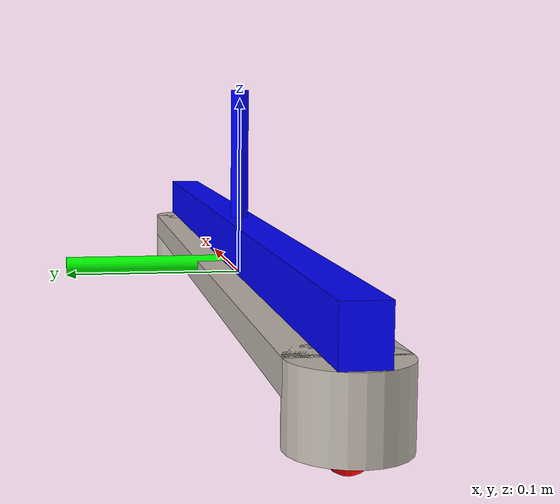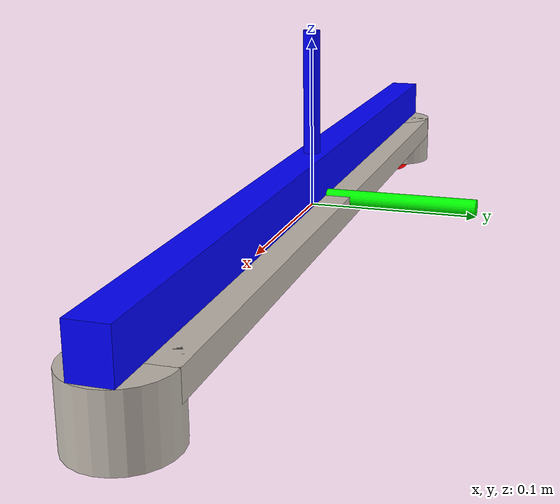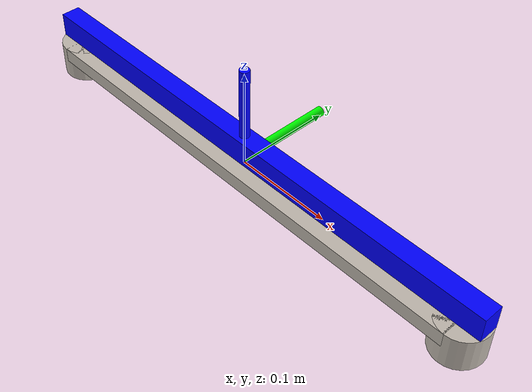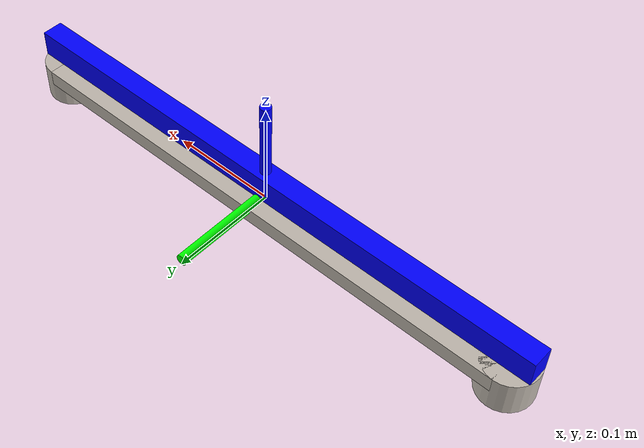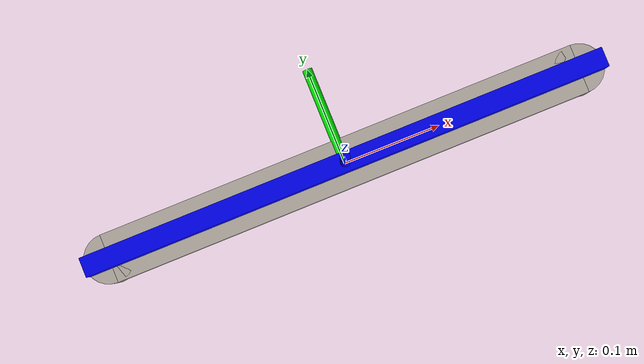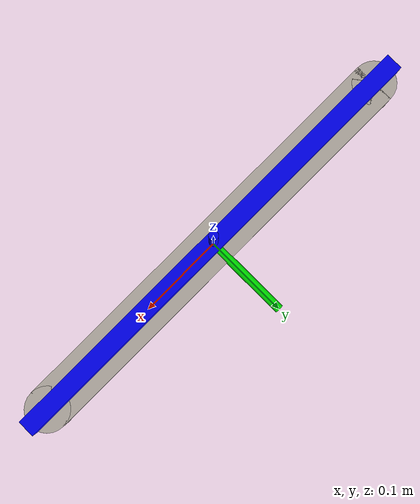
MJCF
<mujoco model="assemble_peg">
  <asset>
    <texture file="../textures/red-wood.png" type="cube" name="red-wood" />
    <texture file="../textures/steel-scratched.png" type="cube" name="steel-metal"/>
    <material name="plate_mat" texture="red-wood" texrepeat="3 3" specular="0.4" shininess="0.1" />
    <material name="smetal" reflectance="1.0" shininess="1.0" specular="1.0" texrepeat="1 1" texture="steel-metal" texuniform="true"/>
  </asset>
  <worldbody>
    <body>
      <body name="collision">
        <inertial pos="0 0 0.00543" quat="1 0 0 0" mass="0.947" diaginertia="0.0003 0.027 0.027" />
        <site name="rightp"  pos="0.25 0 -0.0275" size="0.01 0.01 0.01" rgba="0 0 1 1" type="sphere" group="1"/>
        <site name="leftp" pos="-0.25 0 -0.0275" size="0.01 0.01 0.01" rgba="1 0 0 1" type="sphere" group="1"/>

        <site name="peg_orign"  pos="0 0 0.00543"    size="0.01 0.01 0.01" rgba="0 0 1 1" type="sphere" group="1"/>
        <site name="peg_axis_x" pos="0.05 0 0.00543" size="0.005 0.05" quat="0.707105 0 0.707108 0" rgba="1 0 0 1" type="cylinder" group="1"/>
        <site name="peg_axis_y" pos="0 0.05 0.00543" size="0.005 0.05" quat="-0.707105 -0.707108 0 0" rgba="0 1 0 1" type="cylinder" group="1"/>
        <site name="peg_axis_z" pos="0 0 0.05543"    size="0.005 0.05" quat="1 0 0 0" rgba="0 0 1 1" type="cylinder" group="1"/>

        <geom pos="0 0 0" size="0.25 0.025 0.0075" type="box" group="1" friction="1 0.005 0.0001" material="smetal"/>
        <geom pos="0 0 0.02" size="0.273 0.01 0.0125" type="box" group="1" friction="1 0.005 0.0001" rgba="0 0 1 1"/>
        <geom pos="-0.25 0 -0.01" size="0.025 0.0175" type="cylinder" group="1" friction="1 0.1 0.0001" material="smetal"/>
        <geom pos="0.25 0 -0.01" size="0.025 0.0175" type="cylinder" group="1" friction="1 0.1 0.0001" material="smetal"/>
        <site name="left_grab_point"  pos="-0.25 0 0.018" size="0.002 0.002 0.002" rgba="0 0 1 1" type="sphere" group="1"/>
        <site name="right_grab_point" pos="0.25 0 0.018"  size="0.002 0.002 0.002" rgba="0 0 1 1" type="sphere" group="1"/>
      </body>

      <site rgba="0 0 0 0" size="0.005" pos="0 0 -0.02" name="bottom_site"/>
      <site rgba="0 0 0 0" size="0.005" pos="0 0 0.02" name="top_site"/>
      <site rgba="0 0 0 0" size="0.005" pos="0.25 0.25 0.1" name="horizontal_radius_site"/>
    </body>
  </worldbody>
</mujoco>
